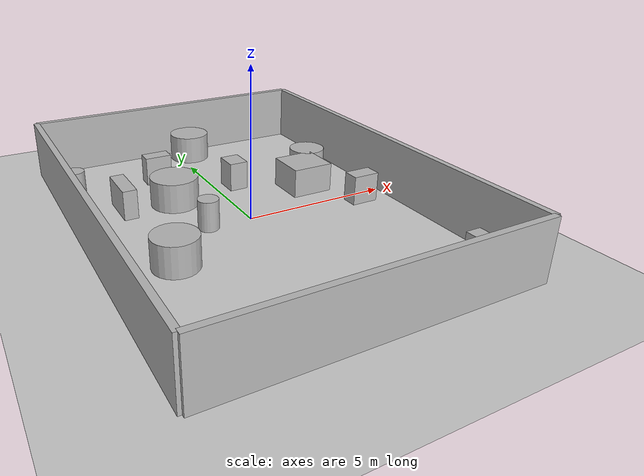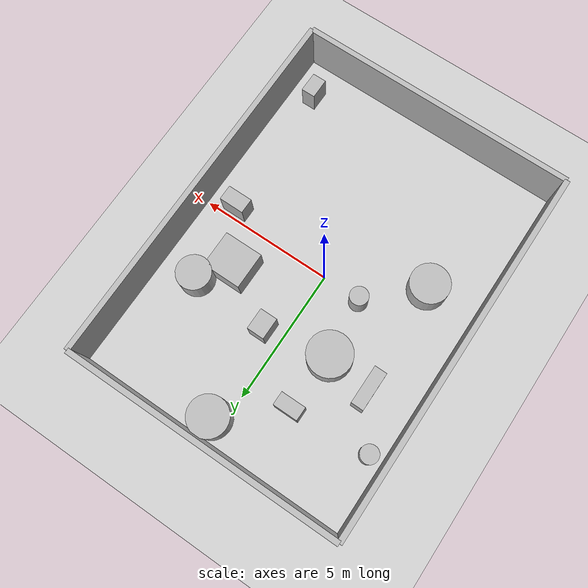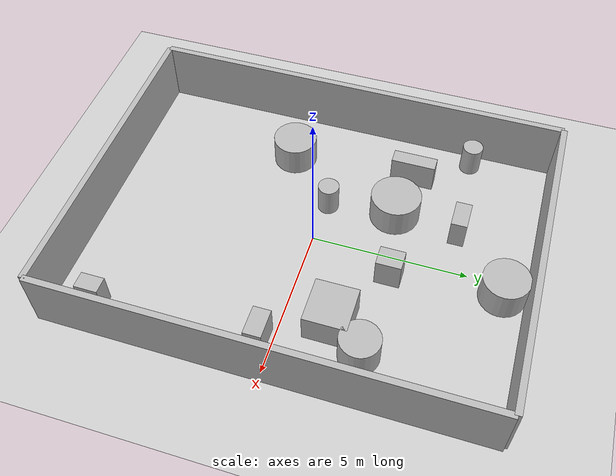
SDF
<?xml version="1.0"?>
<sdf version="1.6">
  <world name="env_81">

    <include><uri>model://ground_plane</uri></include>
    <include><uri>model://sun</uri></include>

    <!-- WALLS -->
    <model name="wall_north"><static>true</static><pose>0 6.932844088596271 1 0 0 0</pose>
      <link name="link"><collision name="collision">
        <geometry><box><size>10.352618549189652 0.2 2</size></box></geometry>
      </collision><visual name="visual">
        <geometry><box><size>10.352618549189652 0.2 2</size></box></geometry>
      </visual></link>
    </model>

    <model name="wall_south"><static>true</static><pose>0 -6.932844088596271 1 0 0 0</pose>
      <link name="link"><collision name="collision">
        <geometry><box><size>10.352618549189652 0.2 2</size></box></geometry>
      </collision><visual name="visual">
        <geometry><box><size>10.352618549189652 0.2 2</size></box></geometry>
      </visual></link>
    </model>

    <model name="wall_east"><static>true</static><pose>5.176309274594826 0 1 0 0 1.57</pose>
      <link name="link"><collision name="collision">
        <geometry><box><size>13.865688177192542 0.2 2</size></box></geometry>
      </collision><visual name="visual">
        <geometry><box><size>13.865688177192542 0.2 2</size></box></geometry>
      </visual></link>
    </model>

    <model name="wall_west"><static>true</static><pose>-5.176309274594826 0 1 0 0 1.57</pose>
      <link name="link"><collision name="collision">
        <geometry><box><size>13.865688177192542 0.2 2</size></box></geometry>
      </collision><visual name="visual">
        <geometry><box><size>13.865688177192542 0.2 2</size></box></geometry>
      </visual></link>
    </model>

    <!-- SENSOR -->

    <model name="lidar_sensor">
      <static>true</static>
      <pose>-3.626562618689303 -5.648507018049638 0.4 0 0 0</pose>
      <link name="link">
        <sensor name="lidar" type="ray">
          <pose>0 0 0 0 0 0</pose>
          <visualize>true</visualize>
          <always_on>true</always_on>
          <update_rate>10</update_rate>
          <ray>
            <scan><horizontal>
              <samples>180</samples>
              <resolution>1</resolution>
              <min_angle>-3.14159</min_angle>
              <max_angle>3.14159</max_angle>
            </horizontal></scan>
            <range><min>0.15</min><max>20.0</max><resolution>0.01</resolution></range>
          </ray>
          <plugin name="lidar_plugin" filename="liblidar_plugin.so"/>
        </sensor>
      </link>
    </model>

    <!-- OBSTACLES -->

    <model name="obstacle_0">
      <static>true</static>
      <pose>2.827458094092794 1.423446515472457 0.5 0 0 0</pose>
      <link name="link">
        <collision name="collision">
          <geometry><box><size>1.45 1.36 1.0</size></box></geometry>
        </collision>
        <visual name="visual">
          <geometry><box><size>1.45 1.36 1.0</size></box></geometry>
        </visual>
      </link>
    </model>

    <model name="obstacle_1">
      <static>true</static>
      <pose>0.7165303953571671 2.6731879200624693 0.5 0 0 0</pose>
      <link name="link">
        <collision name="collision">
          <geometry><box><size>0.65 0.8 1.0</size></box></geometry>
        </collision>
        <visual name="visual">
          <geometry><box><size>0.65 0.8 1.0</size></box></geometry>
        </visual>
      </link>
    </model>

    <model name="obstacle_2">
      <static>true</static>
      <pose>3.6641551559554246 2.515289117173536 0.5 0 0 0</pose>
      <link name="link">
        <collision name="collision">
          <geometry><cylinder><radius>0.63</radius><length>1.0</length></cylinder></geometry>
        </collision>
        <visual name="visual">
          <geometry><cylinder><radius>0.63</radius><length>1.0</length></cylinder></geometry>
        </visual>
      </link>
    </model>

    <model name="obstacle_3">
      <static>true</static>
      <pose>-1.569660916406701 4.397176715395171 0.5 0 0 0</pose>
      <link name="link">
        <collision name="collision">
          <geometry><box><size>0.93 0.51 1.0</size></box></geometry>
        </collision>
        <visual name="visual">
          <geometry><box><size>0.93 0.51 1.0</size></box></geometry>
        </visual>
      </link>
    </model>

    <model name="obstacle_4">
      <static>true</static>
      <pose>-3.4003532579558433 2.473963622655612 0.5 0 0 0</pose>
      <link name="link">
        <collision name="collision">
          <geometry><box><size>0.47 1.44 1.0</size></box></geometry>
        </collision>
        <visual name="visual">
          <geometry><box><size>0.47 1.44 1.0</size></box></geometry>
        </visual>
      </link>
    </model>

    <model name="obstacle_5">
      <static>true</static>
      <pose>-3.2055882976201446 -1.6181082858859623 0.5 0 0 0</pose>
      <link name="link">
        <collision name="collision">
          <geometry><cylinder><radius>0.72</radius><length>1.0</length></cylinder></geometry>
        </collision>
        <visual name="visual">
          <geometry><cylinder><radius>0.72</radius><length>1.0</length></cylinder></geometry>
        </visual>
      </link>
    </model>

    <model name="obstacle_6">
      <static>true</static>
      <pose>4.211056210186999 -5.573034811473177 0.5 0 0 0</pose>
      <link name="link">
        <collision name="collision">
          <geometry><box><size>0.52 0.75 1.0</size></box></geometry>
        </collision>
        <visual name="visual">
          <geometry><box><size>0.52 0.75 1.0</size></box></geometry>
        </visual>
      </link>
    </model>

    <model name="obstacle_7">
      <static>true</static>
      <pose>4.006400927693218 -0.4167253415759893 0.5 0 0 0</pose>
      <link name="link">
        <collision name="collision">
          <geometry><box><size>0.93 0.56 1.0</size></box></geometry>
        </collision>
        <visual name="visual">
          <geometry><box><size>0.93 0.56 1.0</size></box></geometry>
        </visual>
      </link>
    </model>

    <model name="obstacle_8">
      <static>true</static>
      <pose>0.4236192628218145 6.1269548427320615 0.5 0 0 0</pose>
      <link name="link">
        <collision name="collision">
          <geometry><cylinder><radius>0.73</radius><length>1.0</length></cylinder></geometry>
        </collision>
        <visual name="visual">
          <geometry><cylinder><radius>0.73</radius><length>1.0</length></cylinder></geometry>
        </visual>
      </link>
    </model>

    <model name="obstacle_9">
      <static>true</static>
      <pose>-1.4509130594375375 0.07862536815466115 0.5 0 0 0</pose>
      <link name="link">
        <collision name="collision">
          <geometry><cylinder><radius>0.34</radius><length>1.0</length></cylinder></geometry>
        </collision>
        <visual name="visual">
          <geometry><cylinder><radius>0.34</radius><length>1.0</length></cylinder></geometry>
        </visual>
      </link>
    </model>

    <model name="obstacle_10">
      <static>true</static>
      <pose>-1.71828076843999 2.257505495031081 0.5 0 0 0</pose>
      <link name="link">
        <collision name="collision">
          <geometry><cylinder><radius>0.81</radius><length>1.0</length></cylinder></geometry>
        </collision>
        <visual name="visual">
          <geometry><cylinder><radius>0.81</radius><length>1.0</length></cylinder></geometry>
        </visual>
      </link>
    </model>

    <model name="obstacle_11">
      <static>true</static>
      <pose>-4.555477910006431 4.222190301843517 0.5 0 0 0</pose>
      <link name="link">
        <collision name="collision">
          <geometry><cylinder><radius>0.33</radius><length>1.0</length></cylinder></geometry>
        </collision>
        <visual name="visual">
          <geometry><cylinder><radius>0.33</radius><length>1.0</length></cylinder></geometry>
        </visual>
      </link>
    </model>

  </world>
</sdf>
